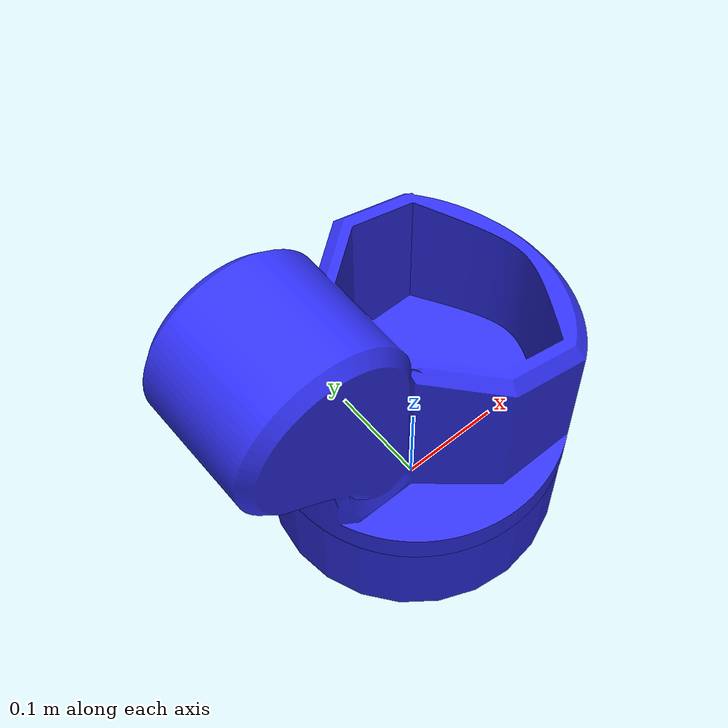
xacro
<?xml version="1.0"?>
<robot xmlns:xacro="http://www.ros.org/wiki/xacro">

    <xacro:include filename="inertial_macros.xacro"/>

    <material name="white">
        <color rgba="1 1 1 1"/>
    </material>

    <material name="orange">
        <color rgba="1 0.3 0.1 1"/>
    </material>

    <material name="blue">
        <color rgba="0.2 0.2 1 1"/>
    </material>

    <material name="black">
        <color rgba="0 0 0 1"/>
    </material>

    <!-- ___________________________________ Base _______________________________ -->

    <joint name="world_joint" type="fixed">
        <parent link="world" />
        <child link="base" />
        <origin xyz="0 0 0" />
    </joint>

    <link name="world">
    </link>

    <link name="base">
        <visual>
            <origin xyz="0 0 0.05"/>
            <geometry>
                <cylinder radius="0.1355" length="0.1"/>
            </geometry>
            <material name="blue"/>
        </visual>
        <collision>
            <origin xyz="0 0 0.05"/>
            <geometry>
                <cylinder radius="0.1355" length="0.1"/>
            </geometry>
        </collision>
        <xacro:inertial_cylinder mass="5" length="0.1" radius="0.1355">
            <origin xyz="0 0 0" rpy="0 0 0"/>
        </xacro:inertial_cylinder>
    </link>

    <!-- ___________________________________ Rotating Base _______________________________ -->

    <joint name="rot_base_joint" type="continuous">
    <parent link="base"/>
    <child link="rot_base"/>
    <axis xyz="0 0 1"/>
    <origin xyz="0 0 0.1" rpy="0 0 0"/>
    </joint>

    <link name="rot_base">
        <visual>
            <origin xyz="-0.1355 0 0.2"/>
            <geometry>
                <mesh filename="package://example_package/meshes/rot_base.stl" scale="0.001 0.001 0.001" />
            </geometry>
            <material name="blue"/>
        </visual>
        <collision>
            <origin xyz="-0.1355 0 0.2"/>
            <geometry>
                <mesh filename="package://example_package/meshes/rot_base.stl" scale="0.001 0.001 0.001" />
            </geometry>
        </collision>
        <xacro:inertial_cylinder mass="2.5" length="0.05" radius="0.1355">
            <origin xyz="0 0 0" rpy="0 0 0"/>
        </xacro:inertial_cylinder>
    </link>

</robot>
